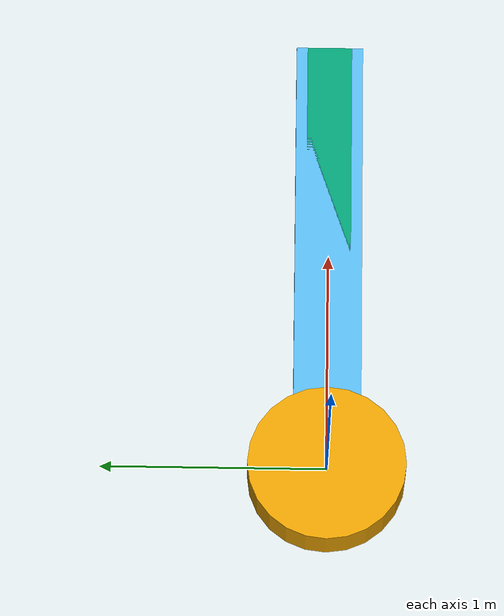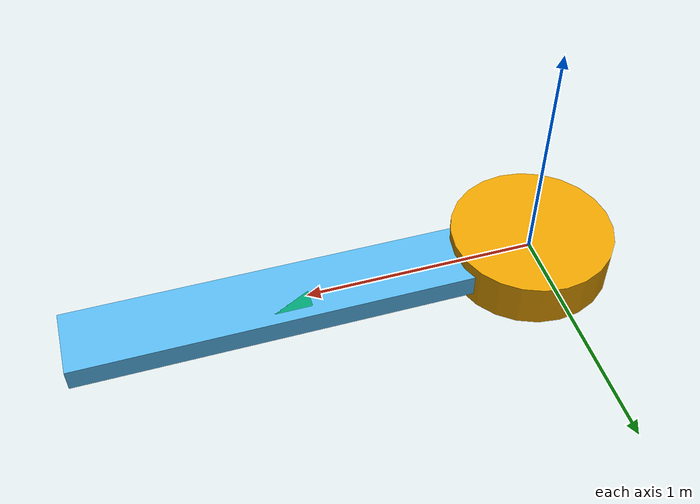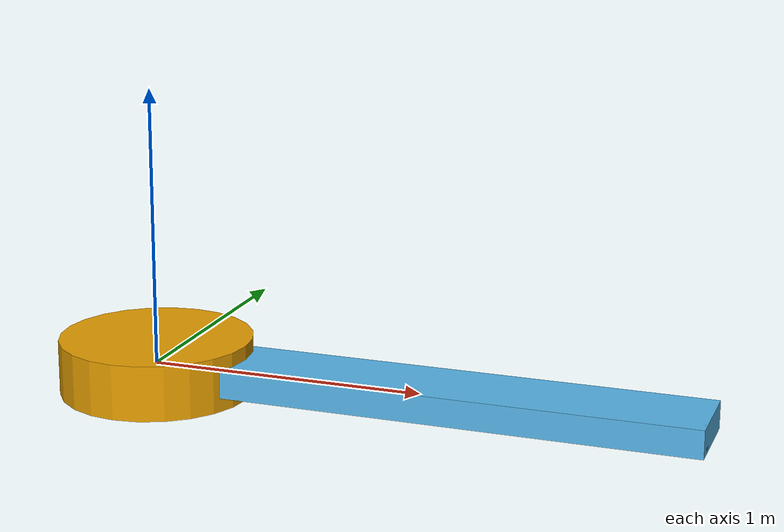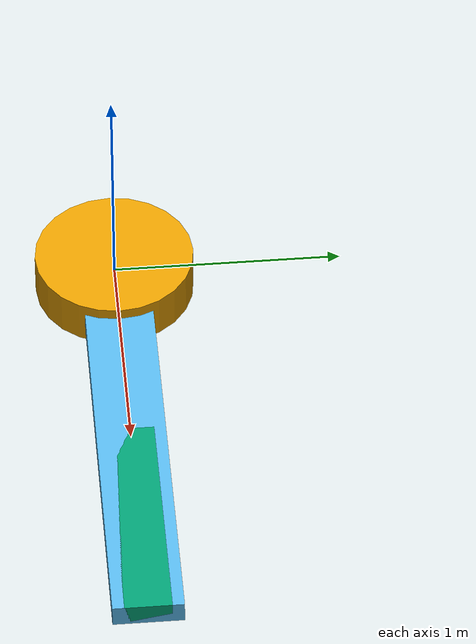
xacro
<?xml version="1.0" ?>

<!--
Changelog:
            - Agregado el eje para el efector final para poder calcular
            la cinematica directa.
        -->

<robot name="pant" xmlns:xacro="http://www.ros.org/wiki/xacro">

    <link name="base_link">
        <visual>
            <origin rpy="0 0 0" xyz="0 0 0"/>
            <geometry>
                <cylinder radius="0.35" length="0.2"/>
            </geometry>
        </visual>
    </link>

    <joint name="baselink__link01" type="revolute">
        <axis xyz="0 0 1"/>
        <limit effort="1000.0" lower="0" upper="1.57" velocity="0.5"/>
        <origin rpy="0 0 0" xyz="0 0 0"/>
        <parent link="base_link"/>
        <child link="link_01"/>
    </joint>

    <link name="link_01">
        <visual>
            <origin rpy="0 0 0" xyz="1 0 0"/>
            <geometry>
                <box size="2 0.3 0.1"/>
            </geometry>
        </visual>
    </link>

    <joint name="link01__link02" type="prismatic">
        <axis xyz="1 0 0"/>
        <limit effort="1000.0" lower="0" upper="1" velocity="0.5"/>
        <origin rpy="0 0 0" xyz="1 0 0"/>
        <parent link="link_01"/>
        <child link="link_02"/>
    </joint>

    <link name="link_02">
        <visual>
            <origin rpy="0 0 0" xyz="0.5 0 0"/>
            <geometry>
                <box size="1 0.2 0.1"/>
            </geometry>
        </visual>
    </link>

    <!--La herramienta no existe, solo se ubica para que muestre lo ejes-->

    <joint name="link02__efector" type="fixed">
        <axis xyz="1 0 0"/>
        <origin rpy="0 0 0" xyz="1 0 0"/>
        <parent link="link_02"/>
        <child link="efector"/>
    </joint>

    <link name="efector">

    </link>

</robot>
